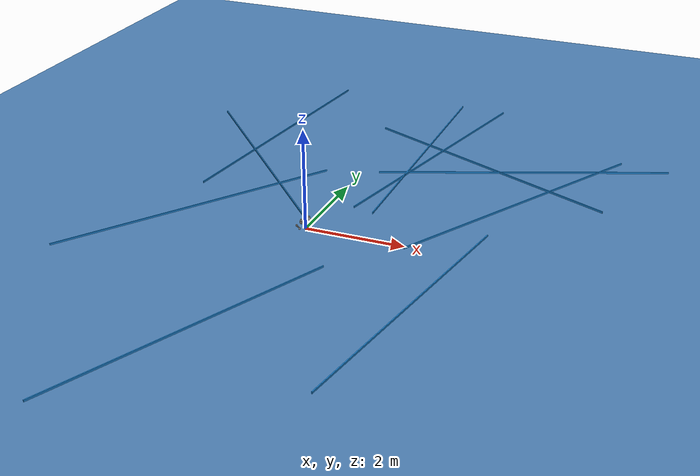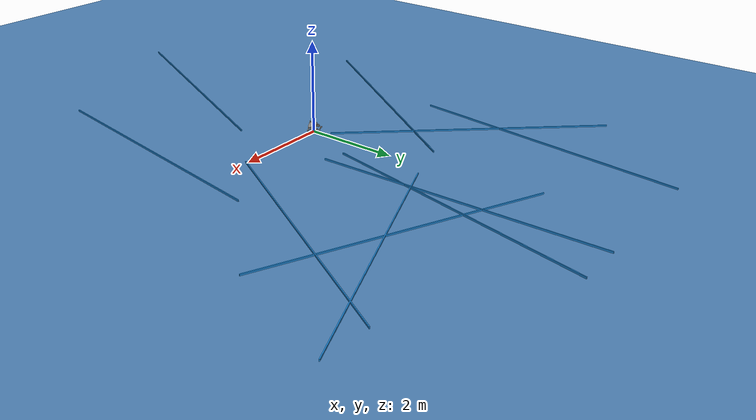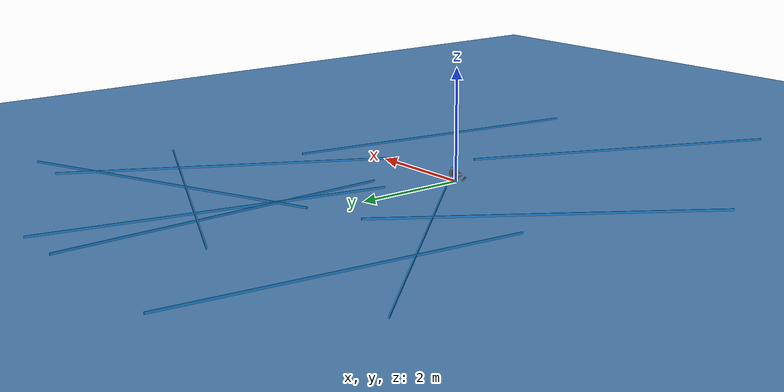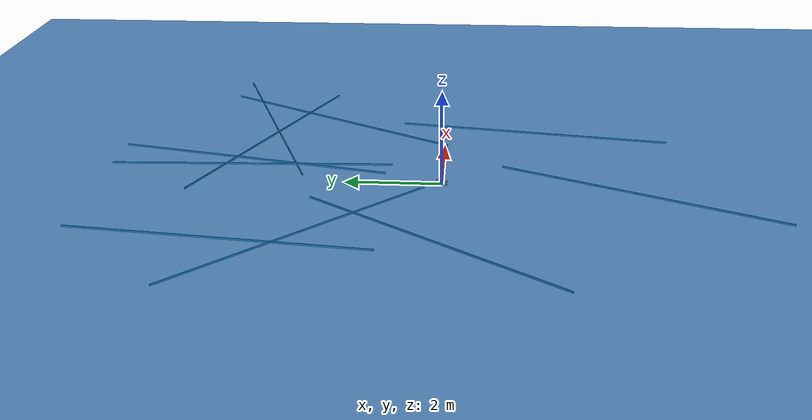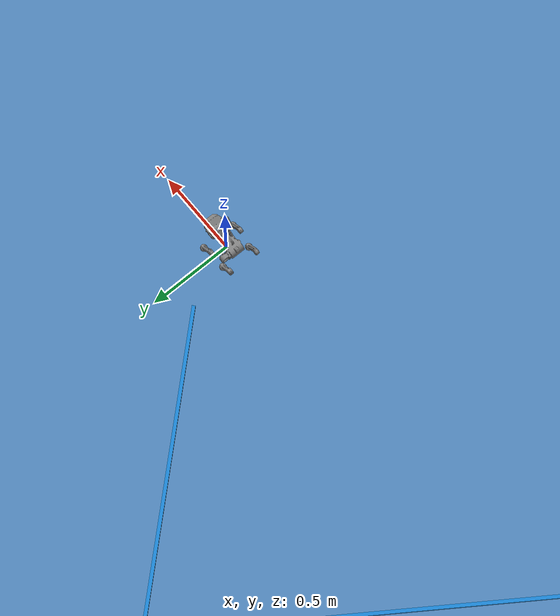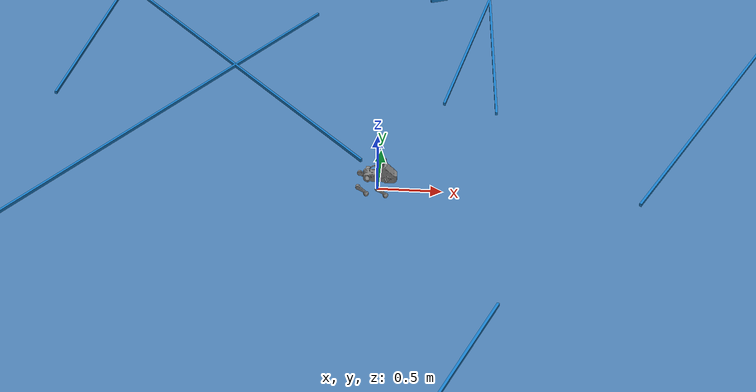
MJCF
<mujoco model="pupper_v3">
    <keyframe>
        <key name="home"
            qpos="0 0 0.28             1 0 0 0             0.0 0.0 0.0             0.0 0.0 0.0             0.0 0.0 0.0             0.0 0.0 0.0"
            ctrl="0.0 0.0 0.0             0.0 0.0 0.0             0.0 0.0 0.0             0.0 0.0 0.0" />
    </keyframe>
    <asset>
        <texture type="skybox" builtin="gradient" rgb1=".3 .5 .7" rgb2="0 0 0" width="512"
            height="512" />
        <texture name="grid" type="2d" builtin="checker" width="512" height="512" rgb1=".2 .4 .6"
            rgb2=".4 .6 .8" />
        <material name="grid" texture="grid" texrepeat="1 1" texuniform="true" reflectance="0" />
    </asset>
    <sensor>
        <framequat name="body_quat" objtype="site" objname="body_imu_site" />
        <gyro name="body_gyro" site="body_imu_site" />

        <framequat objtype="site" objname="body_imu_site" name="orientation" />
        <framepos objtype="site" objname="body_imu_site" name="global_position" />
        <framelinvel objtype="site" objname="body_imu_site" name="global_linvel" />
        <frameangvel objtype="site" objname="body_imu_site" name="global_angvel" />
    </sensor>
    <actuator>
        <general joint="leg_front_r_1" name="leg_front_r_1" />
        <general joint="leg_front_r_2" name="leg_front_r_2" />
        <general joint="leg_front_r_3" name="leg_front_r_3" />

        <general joint="leg_front_l_1" name="leg_front_l_1" />
        <general joint="leg_front_l_2" name="leg_front_l_2" />
        <general joint="leg_front_l_3" name="leg_front_l_3" />

        <general joint="leg_back_r_1" name="leg_back_r_1" />
        <general joint="leg_back_r_2" name="leg_back_r_2" />
        <general joint="leg_back_r_3" name="leg_back_r_3" />

        <general joint="leg_back_l_1" name="leg_back_l_1" />
        <general joint="leg_back_l_2" name="leg_back_l_2" />
        <general joint="leg_back_l_3" name="leg_back_l_3" />
    </actuator>
    <default>
        <general forcerange="-3 3" forcelimited="true" biastype="affine" gainprm="5.0 0 0"
            biasprm="0 -5.0 -0.1" />

        <geom condim="3" contype="0" conaffinity="0" />

        <default class="collision">
            <geom group="3" contype="0" conaffinity="1" solimp="0.015 1 0.015"
                friction="0.8 0.02 0.01" />
        </default>

        <joint armature="0.0016" type="hinge" damping="0.01" limited="true" />
    </default>
    <option cone="pyramidal" impratio="40" iterations="1" ls_iterations="5" timestep="0.004">
        <flag eulerdamp="disable" />
    </option>
    <compiler angle="radian" meshdir="../meshes/stl/" autolimits="true" />
    <asset>
        <mesh name="BodyV4v70_001" file="BodyV4v70_001.stl" />
        <mesh name="LegAssemblyForFlangedv26_001" file="LegAssemblyForFlangedv26_001.stl" />
        <mesh name="LegAssemblyForFlangedv26_002" file="LegAssemblyForFlangedv26_002.stl" />
        <mesh name="LegAssemblyForFlangedv26_003" file="LegAssemblyForFlangedv26_003.stl" />
        <mesh name="LegAssemblyForFlangedv26_010" file="LegAssemblyForFlangedv26_010.stl"
            scale="1 -1 1" />
        <mesh name="LegAssemblyForFlangedv26_011" file="LegAssemblyForFlangedv26_011.stl"
            scale="1 1 -1" />
        <mesh name="LegAssemblyForFlangedv26_012" file="LegAssemblyForFlangedv26_012.stl"
            scale="1 1 -1" />
        <mesh name="LegAssemblyForFlangedv26_005" file="LegAssemblyForFlangedv26_005.stl" />
        <mesh name="LegAssemblyForFlangedv26_006" file="LegAssemblyForFlangedv26_006.stl" />
        <mesh name="LegAssemblyForFlangedv26_007" file="LegAssemblyForFlangedv26_007.stl" />
        <mesh name="LegAssemblyForFlangedv26_013" file="LegAssemblyForFlangedv26_013.stl"
            scale="1 -1 1" />
        <mesh name="LegAssemblyForFlangedv26_014" file="LegAssemblyForFlangedv26_014.stl"
            scale="1 1 -1" />
        <mesh name="LegAssemblyForFlangedv26_015" file="LegAssemblyForFlangedv26_015.stl"
            scale="1 1 -1" />
    </asset>
    <worldbody>
        <body name="base_link" pos="0 0 0.13" gravcomp="0">
            <inertial pos="0.025 0 0.015" quat="0 0.677807 0 0.73524" mass="1.506"
                diaginertia="0.00854071 0.0085 0.00235929" />
            <joint name="world_to_body" type="free" />
            <geom size="0.04507 0.06379 0.129715" pos="0.02146 0 0.03345"
                quat="0.499998 -0.5 -0.500002 0.5" type="box" class="collision" />
            <geom quat="0.499998 -0.5 -0.500002 0.5" type="mesh" contype="0" conaffinity="0"
                group="1" density="0" mesh="BodyV4v70_001" />
            <body name="leg_front_r_1" pos="0.075 -0.0835 0" quat="0.707105 0.707108 0 0"
                gravcomp="0">
                <inertial pos="0 0 0" mass="0.18" diaginertia="7.4e-05 5.8e-05 4.8e-05" />
                <joint name="leg_front_r_1" pos="0 0 0" axis="0 0 1" range="-1.22 2.51" />
                <geom pos="0 0 -0.028" quat="1.32679e-06 0 0 1" type="mesh" contype="0"
                    conaffinity="0" group="1" density="0" mesh="LegAssemblyForFlangedv26_001" />
                <body name="leg_front_r_2" pos="0 0 0"
                    quat="0.707107 2.24089e-06 -0.707107 4.83018e-06" gravcomp="0">
                    <inertial pos="0 -0.0334 0.05419" quat="0.903877 0.427791 0 0" mass="0.186"
                        diaginertia="0.000113 9.74951e-05 4.65049e-05" />
                    <joint name="leg_front_r_2" pos="0 0 0" axis="0 0 1" range="-0.42 3.14" />
                    <geom size="0.025" pos="0 -0.0494 0.0685" quat="0.707105 0 0.707108 0"
                        type="sphere" class="collision" />
                    <geom pos="-0.028 0 0" quat="-2.93388e-06 0.707108 2.26082e-06 0.707106"
                        type="mesh" contype="0" conaffinity="0" group="1" density="0"
                        mesh="LegAssemblyForFlangedv26_002" />
                    <body name="leg_front_r_3" pos="0 -0.0494 0.0685" quat="0.707105 0 0.707108 0"
                        gravcomp="0">
                        <inertial pos="0.03866 -0.03585 0.01833"
                            quat="0.270598 0.653281 -0.270598 0.653281" mass="0.05"
                            diaginertia="7.7e-05 7.55e-05 5.5e-06" />
                        <joint name="leg_front_r_3" pos="0 0 0" axis="0 0 1" range="-2.79 0.71" />
                        <geom size="0.01995" pos="0.06231 -0.06216 0.018" quat="1.32679e-06 0 0 1"
                            type="sphere" class="collision" />
                        <geom pos="0.0685 0.0494 -0.028" quat="1.32679e-06 0 0 1" type="mesh"
                            contype="0" conaffinity="0" group="1" density="0"
                            mesh="LegAssemblyForFlangedv26_003" />
                        <site name="leg_front_r_3_foot_site" pos="0.06231 -0.06216 0.018" />
                    </body>
                </body>
            </body>
            <body name="leg_front_l_1" pos="0.075 0.0835 0" quat="0.707105 -0.707108 0 0"
                gravcomp="0">
                <inertial pos="0 0 0" mass="0.18" diaginertia="7.4e-05 5.8e-05 4.8e-05" />
                <joint name="leg_front_l_1" pos="0 0 0" axis="0 0 1" range="-2.51 1.22" />
                <geom pos="0 0 -0.028" quat="1.32679e-06 0 0 1" type="mesh" contype="0"
                    conaffinity="0" group="1" density="0" mesh="LegAssemblyForFlangedv26_010" />
                <body name="leg_front_l_2" pos="0 0 0"
                    quat="-3.89602e-06 0.707107 -1.29867e-06 -0.707107" gravcomp="0">
                    <inertial pos="0 -0.0334 0.05419" quat="0.903877 0.427791 0 0" mass="0.186"
                        diaginertia="0.000113 9.74951e-05 4.65049e-05" />
                    <joint name="leg_front_l_2" pos="0 0 0" axis="0 0 1" range="-3.14 0.42" />
                    <geom size="0.025" pos="0 -0.0494 0.0685" quat="0.707105 0 0.707108 0"
                        type="sphere" class="collision" />
                    <geom pos="0.028 0 0" quat="-2.93388e-06 0.707108 2.26082e-06 0.707106"
                        type="mesh" contype="0" conaffinity="0" group="1" density="0"
                        mesh="LegAssemblyForFlangedv26_011" />
                    <body name="leg_front_l_3" pos="0 -0.0494 0.0685"
                        quat="9.38184e-07 -0.707108 9.38187e-07 0.707105" gravcomp="0">
                        <inertial pos="0.03866 0.03585 0.01833"
                            quat="0.653281 0.270598 -0.653281 0.270598" mass="0.05"
                            diaginertia="7.7e-05 7.55e-05 5.5e-06" />
                        <joint name="leg_front_l_3" pos="0 0 0" axis="0 0 1" range="-0.71 2.79" />
                        <geom size="0.01995" pos="0.06231 0.06216 0.018" quat="1.32679e-06 0 0 1"
                            type="sphere" class="collision" />
                        <geom pos="0.0685 -0.0494 -0.028"
                            quat="1.76029e-12 1.32679e-06 1 1.32679e-06" type="mesh" contype="0"
                            conaffinity="0" group="1" density="0"
                            mesh="LegAssemblyForFlangedv26_012" />
                        <site name="leg_front_l_3_foot_site" pos="0.06231 0.06216 0.018" />
                    </body>
                </body>
            </body>
            <body name="leg_back_r_1" pos="-0.075 -0.0725 0" quat="0.707105 0.707108 0 0"
                gravcomp="0">
                <inertial pos="0 0 0" mass="0.18" diaginertia="7.4e-05 5.8e-05 4.8e-05" />
                <joint name="leg_back_r_1" pos="0 0 0" axis="0 0 1" range="-1.22 2.51" />
                <geom pos="0 0 -0.028" quat="1.32679e-06 0 0 1" type="mesh" contype="0"
                    conaffinity="0" group="1" density="0" mesh="LegAssemblyForFlangedv26_005" />
                <body name="leg_back_r_2" pos="0 0 0"
                    quat="0.707107 2.24089e-06 -0.707107 4.83018e-06" gravcomp="0">
                    <inertial pos="0 -0.0334 0.05419" quat="0.903877 0.427791 0 0" mass="0.186"
                        diaginertia="0.000113 9.74951e-05 4.65049e-05" />
                    <joint name="leg_back_r_2" pos="0 0 0" axis="0 0 1" range="-0.42 3.14" />
                    <geom size="0.025" pos="0 -0.0494 0.0685" quat="0.707105 0 0.707108 0"
                        type="sphere" class="collision" />
                    <geom pos="-0.028 0 0" quat="-2.93388e-06 0.707108 2.26082e-06 0.707106"
                        type="mesh" contype="0" conaffinity="0" group="1" density="0"
                        mesh="LegAssemblyForFlangedv26_006" />
                    <body name="leg_back_r_3" pos="0 -0.0494 0.0685" quat="0.707105 0 0.707108 0"
                        gravcomp="0">
                        <inertial pos="0.03866 -0.03585 0.01833"
                            quat="0.270598 0.653281 -0.270598 0.653281" mass="0.05"
                            diaginertia="7.7e-05 7.55e-05 5.5e-06" />
                        <joint name="leg_back_r_3" pos="0 0 0" axis="0 0 1" range="-2.79 0.71" />
                        <geom size="0.01995" pos="0.06231 -0.06216 0.018" quat="1.32679e-06 0 0 1"
                            type="sphere" class="collision" />
                        <geom pos="0.0685 0.0494 -0.028" quat="1.32679e-06 0 0 1" type="mesh"
                            contype="0" conaffinity="0" group="1" density="0"
                            mesh="LegAssemblyForFlangedv26_007" />
                        <site name="leg_back_r_3_foot_site" pos="0.06231 -0.06216 0.018" />
                    </body>
                </body>
            </body>
            <body name="leg_back_l_1" pos="-0.075 0.0725 0" quat="0.707105 -0.707108 0 0"
                gravcomp="0">
                <inertial pos="0 0 0" mass="0.18" diaginertia="7.4e-05 5.8e-05 4.8e-05" />
                <joint name="leg_back_l_1" pos="0 0 0" axis="0 0 1" range="-2.51 1.22" />
                <geom pos="0 0 -0.028" quat="1.32679e-06 0 0 1" type="mesh" contype="0"
                    conaffinity="0" group="1" density="0" mesh="LegAssemblyForFlangedv26_013" />
                <body name="leg_back_l_2" pos="0 0 0"
                    quat="-3.89602e-06 0.707107 -1.29867e-06 -0.707107" gravcomp="0">
                    <inertial pos="0 -0.0334 0.05419" quat="0.903877 0.427791 0 0" mass="0.186"
                        diaginertia="0.000113 9.74951e-05 4.65049e-05" />
                    <joint name="leg_back_l_2" pos="0 0 0" axis="0 0 1" range="-3.14 0.42" />
                    <geom size="0.025" pos="0 -0.0494 0.0685" quat="0.707105 0 0.707108 0"
                        type="sphere" class="collision" />
                    <geom pos="0.028 0 0" quat="-2.93388e-06 0.707108 2.26082e-06 0.707106"
                        type="mesh" contype="0" conaffinity="0" group="1" density="0"
                        mesh="LegAssemblyForFlangedv26_014" />
                    <body name="leg_back_l_3" pos="0 -0.0494 0.0685"
                        quat="9.38184e-07 -0.707108 9.38187e-07 0.707105" gravcomp="0">
                        <inertial pos="0.03866 0.03585 0.01833"
                            quat="0.653281 0.270598 -0.653281 0.270598" mass="0.05"
                            diaginertia="7.7e-05 7.55e-05 5.5e-06" />
                        <joint name="leg_back_l_3" pos="0 0 0" axis="0 0 1" range="-0.71 2.79" />
                        <geom size="0.01995" pos="0.06231 0.06216 0.018" quat="1.32679e-06 0 0 1"
                            type="sphere" class="collision" />
                        <geom pos="0.0685 -0.0494 -0.028"
                            quat="1.76029e-12 1.32679e-06 1 1.32679e-06" type="mesh" contype="0"
                            conaffinity="0" group="1" density="0"
                            mesh="LegAssemblyForFlangedv26_015" />
                        <site name="leg_back_l_3_foot_site" pos="0.06231 0.06216 0.018" />
                    </body>
                </body>
            </body>
            <site name="body_imu_site" pos="0.09 0 0.032" />
        </body>
        <geom name="floor" size="0 0 .05" type="plane" material="grid" condim="3" contype="1"
            conaffinity="1" />
        <geom name="floor_visual" size="0 0 .05" pos="0 0 -0.001" type="plane" material="grid"
            condim="3" contype="0" conaffinity="0" group="1" />
        <light name="spotlight" mode="targetbodycom" target="base_link" diffuse="0.9 0.9 0.9"
            specular="0.3 0.3 0.3" pos="0 -4 4" cutoff="100" />
        <camera name="tracking_cam" mode="targetbody" target="base_link" pos="0.5 -0.5 0.5" />
        <geom name="box_geom_0" pos="3.4442185152504816 2.5795440294030243 0"
            quat="0.9690281653162415 0 0 -0.24695022742212439" type="box" size="0.01 3.0 0.02"
            rgba="0.1 0.5 0.8 1" conaffinity="1" contype="1" condim="3" group="0" />
        <geom name="box_geom_1" pos="-2.4108324970703663 0.11274721368608542 0"
            quat="0.9557321534839335 0 0 -0.2942380852251507" type="box" size="0.01 3.0 0.02"
            rgba="0.1 0.5 0.8 1" conaffinity="1" contype="1" condim="3" group="0" />
        <geom name="box_geom_2" pos="2.837985890347726 -1.9668727392107255 0"
            quat="0.9972984135319494 0 0 -0.07345661554044684" type="box" size="0.01 3.0 0.02"
            rgba="0.1 0.5 0.8 1" conaffinity="1" contype="1" condim="3" group="0" />
        <geom name="box_geom_3" pos="0.8338203945503118 4.081128851953352 0"
            quat="0.9998916010462998 0 0 0.014723659771507837" type="box" size="0.01 3.0 0.02"
            rgba="0.1 0.5 0.8 1" conaffinity="1" contype="1" condim="3" group="0" />
        <geom name="box_geom_4" pos="-2.1816215560029617 2.5580420415722394 0"
            quat="0.9316505231814984 0 0 0.36335561459215154" type="box" size="0.01 3.0 0.02"
            rgba="0.1 0.5 0.8 1" conaffinity="1" contype="1" condim="3" group="0" />
        <geom name="box_geom_5" pos="-2.4949365863755943 4.097462559682402 0"
            quat="0.05405466356262328 0 0 0.9985379779192836" type="box" size="0.01 3.0 0.02"
            rgba="0.1 0.5 0.8 1" conaffinity="1" contype="1" condim="3" group="0" />
        <geom name="box_geom_6" pos="3.102172359965895 4.021659504395828 0"
            quat="0.8273410687497695 0 0 -0.5616998806836165" type="box" size="0.01 3.0 0.02"
            rgba="0.1 0.5 0.8 1" conaffinity="1" contype="1" condim="3" group="0" />
        <geom name="box_geom_7" pos="2.298317482601286 3.9883828796799357 0"
            quat="0.8375556206209446 0 0 0.5463520681449503" type="box" size="0.01 3.0 0.02"
            rgba="0.1 0.5 0.8 1" conaffinity="1" contype="1" condim="3" group="0" />
        <geom name="box_geom_8" pos="-0.2785728454728664 -3.992987919316342 0"
            quat="0.9786918939820767 0 0 -0.2053343046199918" type="box" size="0.01 3.0 0.02"
            rgba="0.1 0.5 0.8 1" conaffinity="1" contype="1" condim="3" group="0" />
        <geom name="box_geom_9" pos="1.1088697344380165 4.130110532378982 0"
            quat="0.10471685821701825 0 0 0.994502076219631" type="box" size="0.01 3.0 0.02"
            rgba="0.1 0.5 0.8 1" conaffinity="1" contype="1" condim="3" group="0" />
    </worldbody>
    <custom>
        <numeric data="5" name="max_contact_points" />
        <numeric data="4" name="max_geom_pairs" />
    </custom>
</mujoco>
